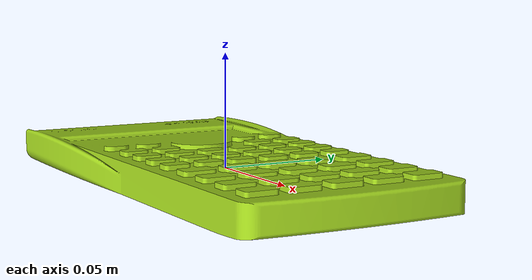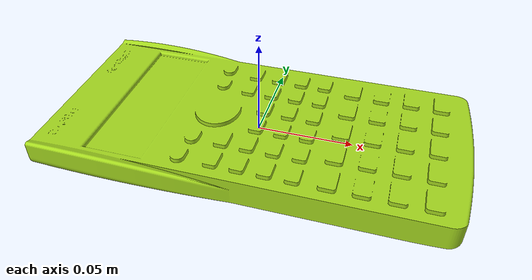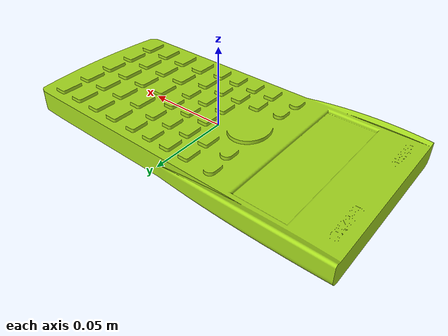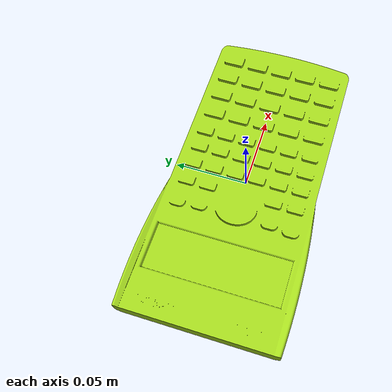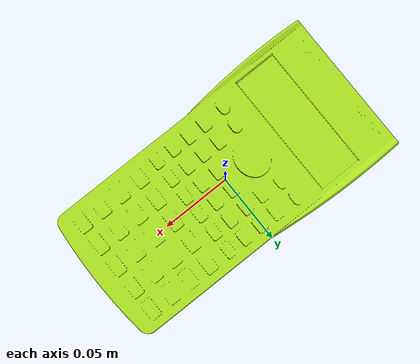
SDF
<?xml version="1.0"?>
<sdf version="1.6">
  <model name="calculator">

    <!-- Dynamic object -->
    <static>false</static>

    <link name="link">

      <gravity>true</gravity>
      <self_collide>false</self_collide>

      <!-- Approx inertia for small calculator -->
      <inertial>
        <mass>0.15</mass>
        <inertia>
          <ixx>0.00015</ixx>
          <iyy>0.0003</iyy>
          <izz>0.00035</izz>
          <ixy>0</ixy>
          <ixz>0</ixz>
          <iyz>0</iyz>
        </inertia>
      </inertial>

      <!-- VISUAL -->
      <visual name="visual">
        <geometry>
          <mesh>
            <uri>model://calculator/meshes/calculator.dae</uri>
            <scale>1 1 1</scale>
          </mesh>
        </geometry>
        <cast_shadows>true</cast_shadows>
      </visual>

      <!-- COLLISION (Using Mesh Instead of Box) -->
      <collision name="collision">
        <geometry>
          <mesh>
            <uri>model://calculator/meshes/calculator.dae</uri>
            <scale>1 1 1</scale>
          </mesh>
        </geometry>

        <surface>
          <contact>
            <ode/>
          </contact>

          <friction>
            <ode>
              <mu>1.2</mu>
              <mu2>1.2</mu2>
            </ode>
          </friction>
        </surface>

      </collision>

    </link>

  </model>
</sdf>
